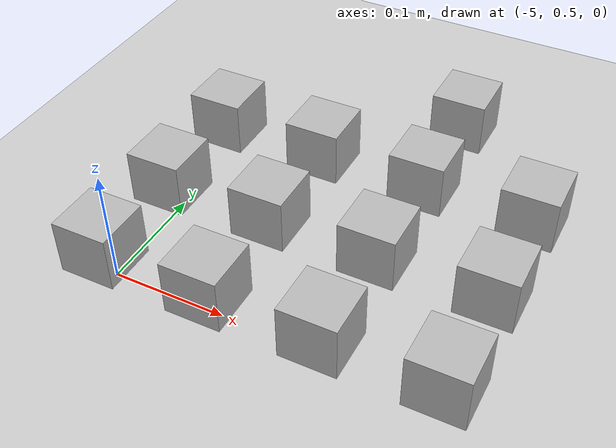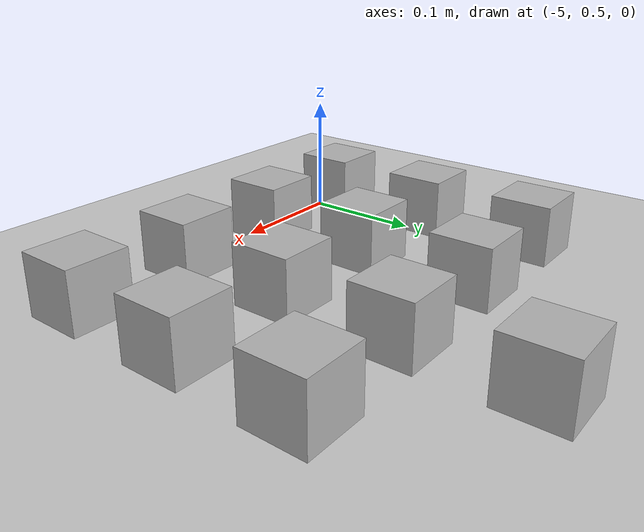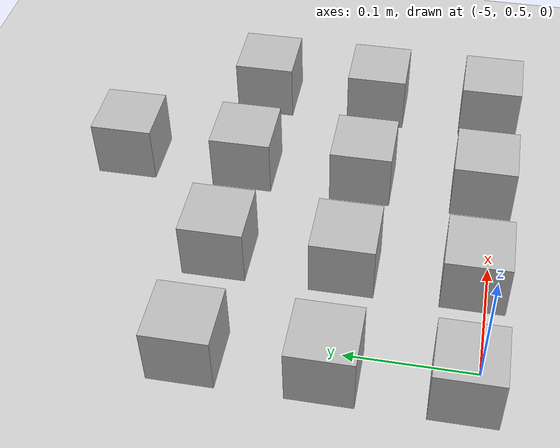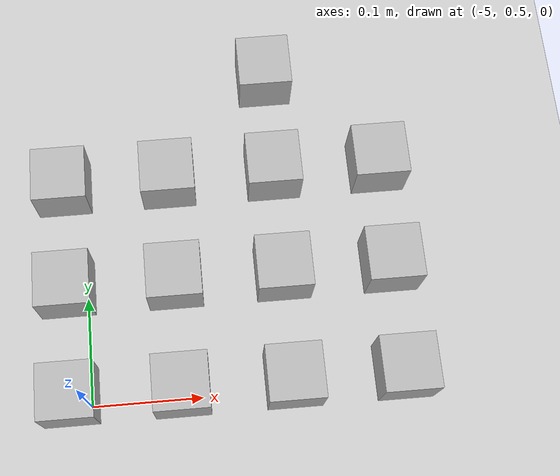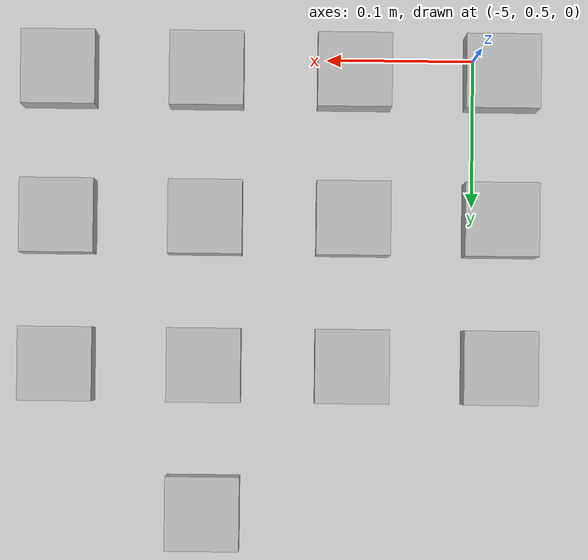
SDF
<sdf version="1.4">
 <world name="default">
  <model name="ground_plane">
   <static>1</static>
   <link name="link">
    <collision name="collision">
     <geometry><plane><normal>0 0 1</normal><size>100 100</size></plane></geometry>
     <surface><friction><ode><mu>100</mu><mu2>50</mu2></ode></friction></surface>
    </collision>
    <visual name="visual">
     <cast_shadows>0</cast_shadows>
     <geometry><plane><normal>0 0 1</normal><size>100 100</size></plane></geometry>
     <material>
      <script><uri>file://media/materials/scripts/gazebo.material</uri><name>Gazebo/Grey</name></script>
     </material>
    </visual>
    <velocity_decay><linear>0</linear><angular>0</angular></velocity_decay>
   </link>
  </model>
  <model name="at0">
   <static>0</static>
   <link name="link">
    <inertial>
     <mass>0.01</mass>
     <inertia><ixx>4e-05</ixx><ixy>0</ixy><ixz>0</ixz><iyy>4e-05</iyy><iyz>0</iyz><izz>4e-05</izz></inertia>
    </inertial>
    <visual name="visual">
     <transparency>0.1</transparency>
     <geometry><box><size>0.05 0.05 0.05</size></box></geometry>
     <material>
      <script>
       <uri>model://at0/materials/scripts</uri>
       <uri>model://at0/materials/textures</uri>
       <name>at0/Diffuse</name>
      </script>
     </material>
    </visual>
    <collision name="collision">
     <geometry><box><size>0.05 0.05 0.05</size></box></geometry>
     <surface><friction><ode><mu>0.8</mu><mu2>0.7</mu2></ode></friction></surface>
    </collision>
    <velocity_decay><linear>0</linear><angular>0</angular></velocity_decay>
   </link>
   <pose>-5.01833 0.509652 0.024997 2.9e-05 2.9e-05 9e-06</pose>
  </model>
  <model name="at1">
   <static>0</static>
   <link name="link">
    <inertial>
     <mass>0.01</mass>
     <inertia><ixx>4e-05</ixx><ixy>0</ixy><ixz>0</ixz><iyy>4e-05</iyy><iyz>0</iyz><izz>4e-05</izz></inertia>
    </inertial>
    <visual name="visual">
     <transparency>0.1</transparency>
     <geometry><box><size>0.05 0.05 0.05</size></box></geometry>
     <material>
      <script>
       <uri>model://at0/materials/scripts</uri>
       <uri>model://at0/materials/textures</uri>
       <name>at0/Diffuse</name>
      </script>
     </material>
    </visual>
    <collision name="collision">
     <geometry><box><size>0.05 0.05 0.05</size></box></geometry>
     <surface><friction><ode><mu>0.8</mu><mu2>0.7</mu2></ode></friction></surface>
    </collision>
    <velocity_decay><linear>0</linear><angular>0</angular></velocity_decay>
   </link>
   <pose>-4.91833 0.509654 0.024993 -2.9e-05 -2.9e-05 9e-06</pose>
  </model>
  <model name="at2">
   <static>0</static>
   <link name="link">
    <inertial>
     <mass>0.01</mass>
     <inertia><ixx>4e-05</ixx><ixy>0</ixy><ixz>0</ixz><iyy>4e-05</iyy><iyz>0</iyz><izz>4e-05</izz></inertia>
    </inertial>
    <visual name="visual">
     <transparency>0.1</transparency>
     <geometry><box><size>0.05 0.05 0.05</size></box></geometry>
     <material>
      <script>
       <uri>model://at0/materials/scripts</uri>
       <uri>model://at0/materials/textures</uri>
       <name>at0/Diffuse</name>
      </script>
     </material>
    </visual>
    <collision name="collision">
     <geometry><box><size>0.05 0.05 0.05</size></box></geometry>
     <surface><friction><ode><mu>0.8</mu><mu2>0.7</mu2></ode></friction></surface>
    </collision>
    <velocity_decay><linear>0</linear><angular>0</angular></velocity_decay>
   </link>
   <pose>-4.81833 0.509652 0.024997 2.9e-05 2.9e-05 9e-06</pose>
  </model>
  <model name="at3">
   <static>0</static>
   <link name="link">
    <inertial>
     <mass>0.01</mass>
     <inertia><ixx>4e-05</ixx><ixy>0</ixy><ixz>0</ixz><iyy>4e-05</iyy><iyz>0</iyz><izz>4e-05</izz></inertia>
    </inertial>
    <visual name="visual">
     <transparency>0.1</transparency>
     <geometry><box><size>0.05 0.05 0.05</size></box></geometry>
     <material>
      <script>
       <uri>model://at0/materials/scripts</uri>
       <uri>model://at0/materials/textures</uri>
       <name>at0/Diffuse</name>
      </script>
     </material>
    </visual>
    <collision name="collision">
     <geometry><box><size>0.05 0.05 0.05</size></box></geometry>
     <surface><friction><ode><mu>0.8</mu><mu2>0.7</mu2></ode></friction></surface>
    </collision>
    <velocity_decay><linear>0</linear><angular>0</angular></velocity_decay>
   </link>
   <pose>-4.71833 0.509654 0.024993 -2.9e-05 -2.9e-05 9e-06</pose>
  </model>
  <model name="at8">
   <static>0</static>
   <link name="link">
    <inertial>
     <mass>0.01</mass>
     <inertia><ixx>4e-05</ixx><ixy>0</ixy><ixz>0</ixz><iyy>4e-05</iyy><iyz>0</iyz><izz>4e-05</izz></inertia>
    </inertial>
    <visual name="visual">
     <transparency>0.1</transparency>
     <geometry><box><size>0.05 0.05 0.05</size></box></geometry>
     <material>
      <script>
       <uri>model://at0/materials/scripts</uri>
       <uri>model://at0/materials/textures</uri>
       <name>at0/Diffuse</name>
      </script>
     </material>
    </visual>
    <collision name="collision">
     <geometry><box><size>0.05 0.05 0.05</size></box></geometry>
     <surface><friction><ode><mu>0.8</mu><mu2>0.7</mu2></ode></friction></surface>
    </collision>
    <velocity_decay><linear>0</linear><angular>0</angular></velocity_decay>
   </link>
   <pose>-5.01833 0.609654 0.024993 -2.9e-05 -2.9e-05 8e-06</pose>
  </model>
  <model name="at9">
   <static>0</static>
   <link name="link">
    <inertial>
     <mass>0.01</mass>
     <inertia><ixx>4e-05</ixx><ixy>0</ixy><ixz>0</ixz><iyy>4e-05</iyy><iyz>0</iyz><izz>4e-05</izz></inertia>
    </inertial>
    <visual name="visual">
     <transparency>0.1</transparency>
     <geometry><box><size>0.05 0.05 0.05</size></box></geometry>
     <material>
      <script>
       <uri>model://at0/materials/scripts</uri>
       <uri>model://at0/materials/textures</uri>
       <name>at0/Diffuse</name>
      </script>
     </material>
    </visual>
    <collision name="collision">
     <geometry><box><size>0.05 0.05 0.05</size></box></geometry>
     <surface><friction><ode><mu>0.8</mu><mu2>0.7</mu2></ode></friction></surface>
    </collision>
    <velocity_decay><linear>0</linear><angular>0</angular></velocity_decay>
   </link>
   <pose>-4.91833 0.609652 0.024997 2.9e-05 2.9e-05 8e-06</pose>
  </model>
  <model name="at10">
   <static>0</static>
   <link name="link">
    <inertial>
     <mass>0.01</mass>
     <inertia><ixx>4e-05</ixx><ixy>0</ixy><ixz>0</ixz><iyy>4e-05</iyy><iyz>0</iyz><izz>4e-05</izz></inertia>
    </inertial>
    <visual name="visual">
     <transparency>0.1</transparency>
     <geometry><box><size>0.05 0.05 0.05</size></box></geometry>
     <material>
      <script>
       <uri>model://at0/materials/scripts</uri>
       <uri>model://at0/materials/textures</uri>
       <name>at0/Diffuse</name>
      </script>
     </material>
    </visual>
    <collision name="collision">
     <geometry><box><size>0.05 0.05 0.05</size></box></geometry>
     <surface><friction><ode><mu>0.8</mu><mu2>0.7</mu2></ode></friction></surface>
    </collision>
    <velocity_decay><linear>0</linear><angular>0</angular></velocity_decay>
   </link>
   <pose>-4.81833 0.609652 0.024997 2.9e-05 2.9e-05 8e-06</pose>
  </model>
  <model name="at11">
   <static>0</static>
   <link name="link">
    <inertial>
     <mass>0.01</mass>
     <inertia><ixx>4e-05</ixx><ixy>0</ixy><ixz>0</ixz><iyy>4e-05</iyy><iyz>0</iyz><izz>4e-05</izz></inertia>
    </inertial>
    <visual name="visual">
     <transparency>0.1</transparency>
     <geometry><box><size>0.05 0.05 0.05</size></box></geometry>
     <material>
      <script>
       <uri>model://at0/materials/scripts</uri>
       <uri>model://at0/materials/textures</uri>
       <name>at0/Diffuse</name>
      </script>
     </material>
    </visual>
    <collision name="collision">
     <geometry><box><size>0.05 0.05 0.05</size></box></geometry>
     <surface><friction><ode><mu>0.8</mu><mu2>0.7</mu2></ode></friction></surface>
    </collision>
    <velocity_decay><linear>0</linear><angular>0</angular></velocity_decay>
   </link>
   <pose>-4.71833 0.609652 0.024997 2.9e-05 2.9e-05 8e-06</pose>
  </model>
  <model name="at16">
   <static>0</static>
   <link name="link">
    <inertial>
     <mass>0.01</mass>
     <inertia><ixx>4e-05</ixx><ixy>0</ixy><ixz>0</ixz><iyy>4e-05</iyy><iyz>0</iyz><izz>4e-05</izz></inertia>
    </inertial>
    <visual name="visual">
     <transparency>0.1</transparency>
     <geometry><box><size>0.05 0.05 0.05</size></box></geometry>
     <material>
      <script>
       <uri>model://at0/materials/scripts</uri>
       <uri>model://at0/materials/textures</uri>
       <name>at0/Diffuse</name>
      </script>
     </material>
    </visual>
    <collision name="collision">
     <geometry><box><size>0.05 0.05 0.05</size></box></geometry>
     <surface><friction><ode><mu>0.8</mu><mu2>0.7</mu2></ode></friction></surface>
    </collision>
    <velocity_decay><linear>0</linear><angular>0</angular></velocity_decay>
   </link>
   <pose>-5.01833 0.709653 0.024993 -2.9e-05 -2.9e-05 7e-06</pose>
  </model>
  <model name="at17">
   <static>0</static>
   <link name="link">
    <inertial>
     <mass>0.01</mass>
     <inertia><ixx>4e-05</ixx><ixy>0</ixy><ixz>0</ixz><iyy>4e-05</iyy><iyz>0</iyz><izz>4e-05</izz></inertia>
    </inertial>
    <visual name="visual">
     <transparency>0.1</transparency>
     <geometry><box><size>0.05 0.05 0.05</size></box></geometry>
     <material>
      <script>
       <uri>model://at0/materials/scripts</uri>
       <uri>model://at0/materials/textures</uri>
       <name>at0/Diffuse</name>
      </script>
     </material>
    </visual>
    <collision name="collision">
     <geometry><box><size>0.05 0.05 0.05</size></box></geometry>
     <surface><friction><ode><mu>0.8</mu><mu2>0.7</mu2></ode></friction></surface>
    </collision>
    <velocity_decay><linear>0</linear><angular>0</angular></velocity_decay>
   </link>
   <pose>-4.91833 0.709652 0.024997 2.9e-05 2.9e-05 7e-06</pose>
  </model>
  <model name="at18">
   <static>0</static>
   <link name="link">
    <inertial>
     <mass>0.01</mass>
     <inertia><ixx>4e-05</ixx><ixy>0</ixy><ixz>0</ixz><iyy>4e-05</iyy><iyz>0</iyz><izz>4e-05</izz></inertia>
    </inertial>
    <visual name="visual">
     <transparency>0.1</transparency>
     <geometry><box><size>0.05 0.05 0.05</size></box></geometry>
     <material>
      <script>
       <uri>model://at0/materials/scripts</uri>
       <uri>model://at0/materials/textures</uri>
       <name>at0/Diffuse</name>
      </script>
     </material>
    </visual>
    <collision name="collision">
     <geometry><box><size>0.05 0.05 0.05</size></box></geometry>
     <surface><friction><ode><mu>0.8</mu><mu2>0.7</mu2></ode></friction></surface>
    </collision>
    <velocity_decay><linear>0</linear><angular>0</angular></velocity_decay>
   </link>
   <pose>-4.81833 0.709652 0.024997 2.9e-05 2.9e-05 7e-06</pose>
  </model>
  <model name="at19">
   <static>0</static>
   <link name="link">
    <inertial>
     <mass>0.01</mass>
     <inertia><ixx>4e-05</ixx><ixy>0</ixy><ixz>0</ixz><iyy>4e-05</iyy><iyz>0</iyz><izz>4e-05</izz></inertia>
    </inertial>
    <visual name="visual">
     <transparency>0.1</transparency>
     <geometry><box><size>0.05 0.05 0.05</size></box></geometry>
     <material>
      <script>
       <uri>model://at0/materials/scripts</uri>
       <uri>model://at0/materials/textures</uri>
       <name>at0/Diffuse</name>
      </script>
     </material>
    </visual>
    <collision name="collision">
     <geometry><box><size>0.05 0.05 0.05</size></box></geometry>
     <surface><friction><ode><mu>0.8</mu><mu2>0.7</mu2></ode></friction></surface>
    </collision>
    <velocity_decay><linear>0</linear><angular>0</angular></velocity_decay>
   </link>
   <pose>-4.71833 0.709652 0.024997 2.9e-05 2.9e-05 7e-06</pose>
  </model>
  <model name="at26">
   <static>0</static>
   <link name="link">
    <inertial>
     <mass>0.01</mass>
     <inertia><ixx>4e-05</ixx><ixy>0</ixy><ixz>0</ixz><iyy>4e-05</iyy><iyz>0</iyz><izz>4e-05</izz></inertia>
    </inertial>
    <visual name="visual">
     <transparency>0.1</transparency>
     <geometry><box><size>0.05 0.05 0.05</size></box></geometry>
     <material>
      <script>
       <uri>model://at0/materials/scripts</uri>
       <uri>model://at0/materials/textures</uri>
       <name>at0/Diffuse</name>
      </script>
     </material>
    </visual>
    <collision name="collision">
     <geometry><box><size>0.05 0.05 0.05</size></box></geometry>
     <surface><friction><ode><mu>0.8</mu><mu2>0.7</mu2></ode></friction></surface>
    </collision>
    <velocity_decay><linear>0</linear><angular>0</angular></velocity_decay>
   </link>
   <pose>-4.81833 0.809652 0.024997 2.9e-05 2.9e-05 6e-06</pose>
  </model>
 </world>
</sdf>
